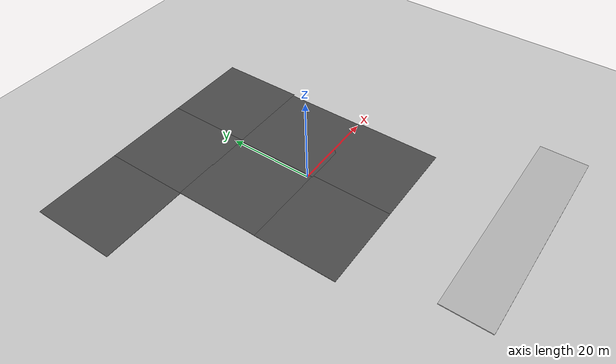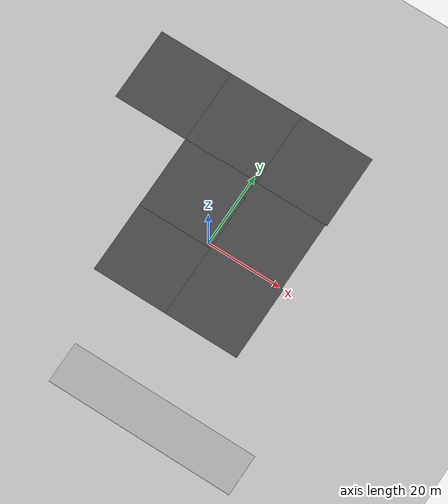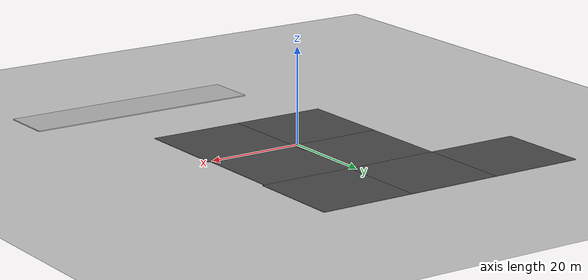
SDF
<sdf version="1.4">
 <world name="default">
  <light name="sun" type="directional">
   <pose>0 0 10 0 -0 0</pose>
   <diffuse>0.8 0.8 0.8 1</diffuse>
   <specular>0.2 0.2 0.2 1</specular>
   <attenuation>
    <range>1000</range>
    <constant>0.9</constant>
    <linear>0.01</linear>
    <quadratic>0.001</quadratic>
   </attenuation>
   <direction>0.5 0.1 -0.9</direction>
  </light>
  <model name="ground_plane">
   <static>1</static>
   <link name="link">
    <collision name="collision">
     <geometry><plane><normal>0 0 1</normal><size>100 100</size></plane></geometry>
     <surface><friction><ode><mu>100</mu><mu2>50</mu2></ode></friction></surface>
    </collision>
    <visual name="visual">
     <cast_shadows>0</cast_shadows>
     <geometry><plane><normal>0 0 1</normal><size>100 100</size></plane></geometry>
     <material>
      <script><uri>file://media/materials/scripts/gazebo.material</uri><name>Gazebo/Grey</name></script>
     </material>
    </visual>
    <velocity_decay><linear>0</linear><angular>0</angular></velocity_decay>
   </link>
  </model>
  <physics type="ode">
   <max_step_size>0.001</max_step_size>
   <real_time_factor>1</real_time_factor>
   <real_time_update_rate>1000</real_time_update_rate>
   <gravity>0 0 -9.8</gravity>
  </physics>
  <scene>
   <ambient>0 0 0 1</ambient>
   <shadows>1</shadows>
   <grid>0</grid>
   <background>0.7 0.7 0.7 1</background>
  </scene>
  <spherical_coordinates>
   <surface_model>EARTH_WGS84</surface_model>
   <latitude_deg>0</latitude_deg>
   <longitude_deg>0</longitude_deg>
   <elevation>0</elevation>
   <heading_deg>0</heading_deg>
  </spherical_coordinates>
  <model name="Straight Road - 50m">
   <static>1</static>
   <link name="link">
    <inertial>
     <mass>1</mass>
     <inertia><ixx>1</ixx><iyy>1</iyy><izz>1</izz><ixy>0</ixy><ixz>0</ixz><iyz>0</iyz></inertia>
    </inertial>
    <collision name="collision">
     <geometry><mesh><uri>model://straight_road_50m/meshes/straight_road_50m.dae</uri></mesh></geometry>
    </collision>
    <visual name="visual">
     <geometry><mesh><uri>model://straight_road_50m/meshes/straight_road_50m.dae</uri></mesh></geometry>
    </visual>
    <velocity_decay><linear>0</linear><angular>0</angular></velocity_decay>
   </link>
   <pose>12.5806 -33.1256 0 0 -0 0</pose>
  </model>
  <model name="asphalt_plane">
   <static>1</static>
   <link name="link">
    <collision name="collision"><geometry><box><size>20 20 0.1</size></box></geometry></collision>
    <visual name="visual">
     <cast_shadows>0</cast_shadows>
     <geometry><box><size>20 20 0.1</size></box></geometry>
     <material>
      <script>
       <uri>model://asphalt_plane/materials/scripts</uri>
       <uri>model://asphalt_plane/materials/textures</uri>
       <name>vrc/asphalt</name>
      </script>
     </material>
    </visual>
    <velocity_decay><linear>0</linear><angular>0</angular></velocity_decay>
   </link>
   <pose>-29 29 0 0 -0 0</pose>
  </model>
  <model name="asphalt_plane_0">
   <static>1</static>
   <link name="link">
    <collision name="collision"><geometry><box><size>20 20 0.1</size></box></geometry></collision>
    <visual name="visual">
     <cast_shadows>0</cast_shadows>
     <geometry><box><size>20 20 0.1</size></box></geometry>
     <material>
      <script>
       <uri>model://asphalt_plane/materials/scripts</uri>
       <uri>model://asphalt_plane/materials/textures</uri>
       <name>vrc/asphalt</name>
      </script>
     </material>
    </visual>
    <velocity_decay><linear>0</linear><angular>0</angular></velocity_decay>
   </link>
   <pose>-9 29 0 0 -0 0</pose>
  </model>
  <model name="asphalt_plane_1">
   <static>1</static>
   <link name="link">
    <collision name="collision"><geometry><box><size>20 20 0.1</size></box></geometry></collision>
    <visual name="visual">
     <cast_shadows>0</cast_shadows>
     <geometry><box><size>20 20 0.1</size></box></geometry>
     <material>
      <script>
       <uri>model://asphalt_plane/materials/scripts</uri>
       <uri>model://asphalt_plane/materials/textures</uri>
       <name>vrc/asphalt</name>
      </script>
     </material>
    </visual>
    <velocity_decay><linear>0</linear><angular>0</angular></velocity_decay>
   </link>
   <pose>11 29 0 0 -0 0</pose>
  </model>
  <model name="asphalt_plane_2">
   <static>1</static>
   <link name="link">
    <collision name="collision"><geometry><box><size>20 20 0.1</size></box></geometry></collision>
    <visual name="visual">
     <cast_shadows>0</cast_shadows>
     <geometry><box><size>20 20 0.1</size></box></geometry>
     <material>
      <script>
       <uri>model://asphalt_plane/materials/scripts</uri>
       <uri>model://asphalt_plane/materials/textures</uri>
       <name>vrc/asphalt</name>
      </script>
     </material>
    </visual>
    <velocity_decay><linear>0</linear><angular>0</angular></velocity_decay>
   </link>
   <pose>-8.96087 9.18086 0 0 -0 0</pose>
  </model>
  <model name="asphalt_plane_3">
   <static>1</static>
   <link name="link">
    <collision name="collision"><geometry><box><size>20 20 0.1</size></box></geometry></collision>
    <visual name="visual">
     <cast_shadows>0</cast_shadows>
     <geometry><box><size>20 20 0.1</size></box></geometry>
     <material>
      <script>
       <uri>model://asphalt_plane/materials/scripts</uri>
       <uri>model://asphalt_plane/materials/textures</uri>
       <name>vrc/asphalt</name>
      </script>
     </material>
    </visual>
    <velocity_decay><linear>0</linear><angular>0</angular></velocity_decay>
   </link>
   <pose>10.5772 9 0 0 -0 0</pose>
  </model>
  <model name="asphalt_plane_4">
   <static>1</static>
   <link name="link">
    <collision name="collision"><geometry><box><size>20 20 0.1</size></box></geometry></collision>
    <visual name="visual">
     <cast_shadows>0</cast_shadows>
     <geometry><box><size>20 20 0.1</size></box></geometry>
     <material>
      <script>
       <uri>model://asphalt_plane/materials/scripts</uri>
       <uri>model://asphalt_plane/materials/textures</uri>
       <name>vrc/asphalt</name>
      </script>
     </material>
    </visual>
    <velocity_decay><linear>0</linear><angular>0</angular></velocity_decay>
   </link>
   <pose>-9 -10 0 0 -0 0</pose>
  </model>
  <model name="asphalt_plane_5">
   <static>1</static>
   <link name="link">
    <collision name="collision"><geometry><box><size>20 20 0.1</size></box></geometry></collision>
    <visual name="visual">
     <cast_shadows>0</cast_shadows>
     <geometry><box><size>20 20 0.1</size></box></geometry>
     <material>
      <script>
       <uri>model://asphalt_plane/materials/scripts</uri>
       <uri>model://asphalt_plane/materials/textures</uri>
       <name>vrc/asphalt</name>
      </script>
     </material>
    </visual>
    <velocity_decay><linear>0</linear><angular>0</angular></velocity_decay>
   </link>
   <pose>11 -10 0 0 -0 0</pose>
  </model>
 </world>
</sdf>
